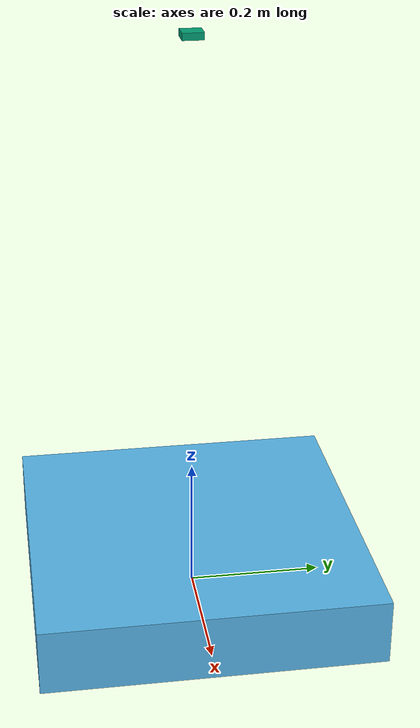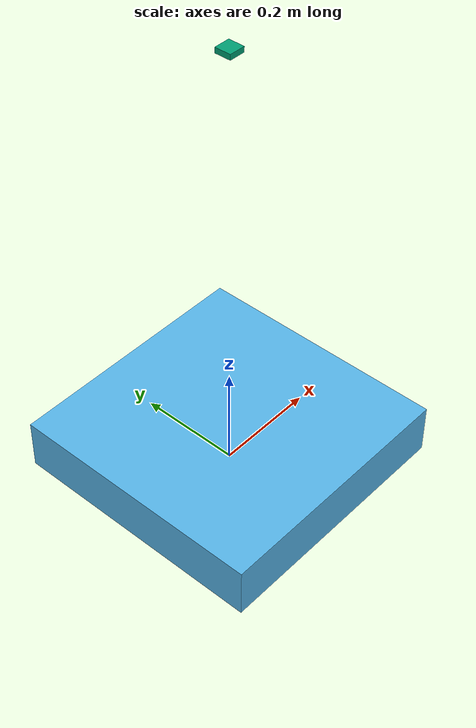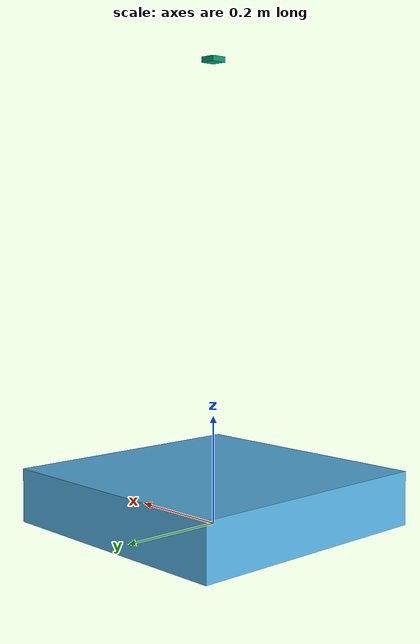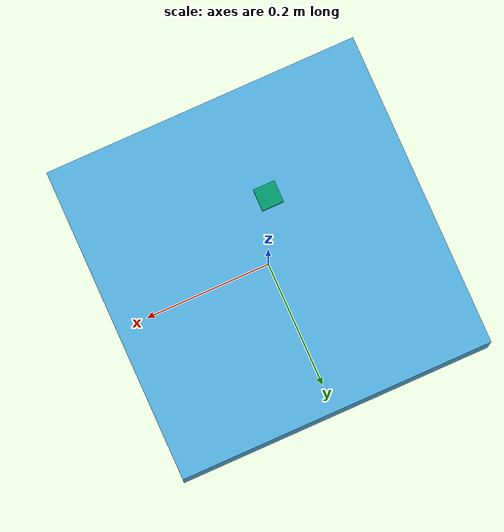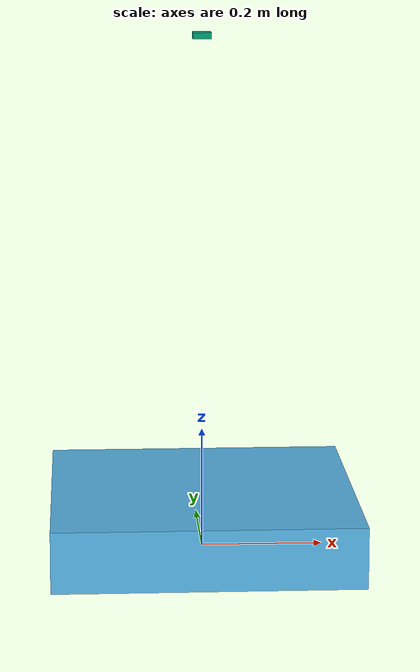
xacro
<?xml version="1.0"?>
<robot xmlns:xacro="http://www.ros.org/wiki/xacro" name="test_um6IMU">

  <xacro:property name="M_PI" value="3.14159"/>
    <xacro:arg name="robot_namespace" default="/" />

  <!-- Base Footprint -->
  <link name="base_footprint" />

  <!-- Base Link-->
  <joint name="footprint" type="fixed" >
   <parent link="base_footprint" />
    <child link="base_link" />
    <origin xyz="0 0 0.05" rpy="0 0 0" />
  </joint>

  <link name="base_link" >
    <visual>
      <geometry>
        <box size="0.5 0.5 0.1" />
      </geometry>
    </visual>
    <collision>
      <geometry>
        <box size="0.5 0.5 0.1" />
      </geometry>
    </collision>
    <inertial>
      <origin xyz="0 0 0"/>
      <mass value="10"/>
      <inertia ixx="3.0" ixy="0.0" ixz="0.0"
               iyy="3.0" iyz="0.0"
               izz="3.0" />
    </inertial>
  </link>

    <joint name="imu_frame_joint" type="fixed">
      <parent link="base_link"/>
      <child link="imu_link"/>
      <origin xyz="0 0 0.8" rpy="0 0 -3.14" />
    </joint>

  <!-- UM6-IMU -->
  <xacro:include filename="$(find gazebo_robot)/sensors/imu/urdf/um6_imu.urdf.xacro"/>
  <xacro:um6_imu  robot_namespace="$(arg robot_namespace)"/>

</robot>

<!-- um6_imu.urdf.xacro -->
<robot xmlns:xacro="http://www.ros.org/wiki/xacro" name="um6_imu">
<xacro:macro name="um6_imu" params=" robot_namespace:=/ topic:=/imu/rawdata">

  <link name="imu_link" >
    <visual>
      <geometry>
        <box size="0.03 0.03 0.01" />
      </geometry>
    </visual>
    <collision>
      <geometry>
        <box size="0.03 0.03 0.01" />
      </geometry>
    </collision>
    <inertial>
      <origin xyz="0 0 0"/>
      <mass value="1"/>
      <inertia ixx="3.0" ixy="0.0" ixz="0.0"
               iyy="3.0" iyz="0.0"
               izz="3.0" />
    </inertial>
  </link>

 <gazebo reference="imu_link">
  </gazebo>

  <gazebo>
    <plugin name="imu_controller" filename="libhector_gazebo_ros_imu.so">
      <robotNamespace>$(arg robot_namespace)</robotNamespace>
      <updateRate>50.0</updateRate>
      <bodyName>base_link</bodyName>
      <topicName>imu/data</topicName>
      <accelDrift>0.005 0.005 0.005</accelDrift>
      <accelGaussianNoise>0.005 0.005 0.005</accelGaussianNoise>
      <rateDrift>0.005 0.005 0.005 </rateDrift>
      <rateGaussianNoise>0.005 0.005 0.005 </rateGaussianNoise>
      <headingDrift>0.005</headingDrift>
      <headingGaussianNoise>0.005</headingGaussianNoise>
    </plugin>
  </gazebo>

    </xacro:macro>
</robot>
